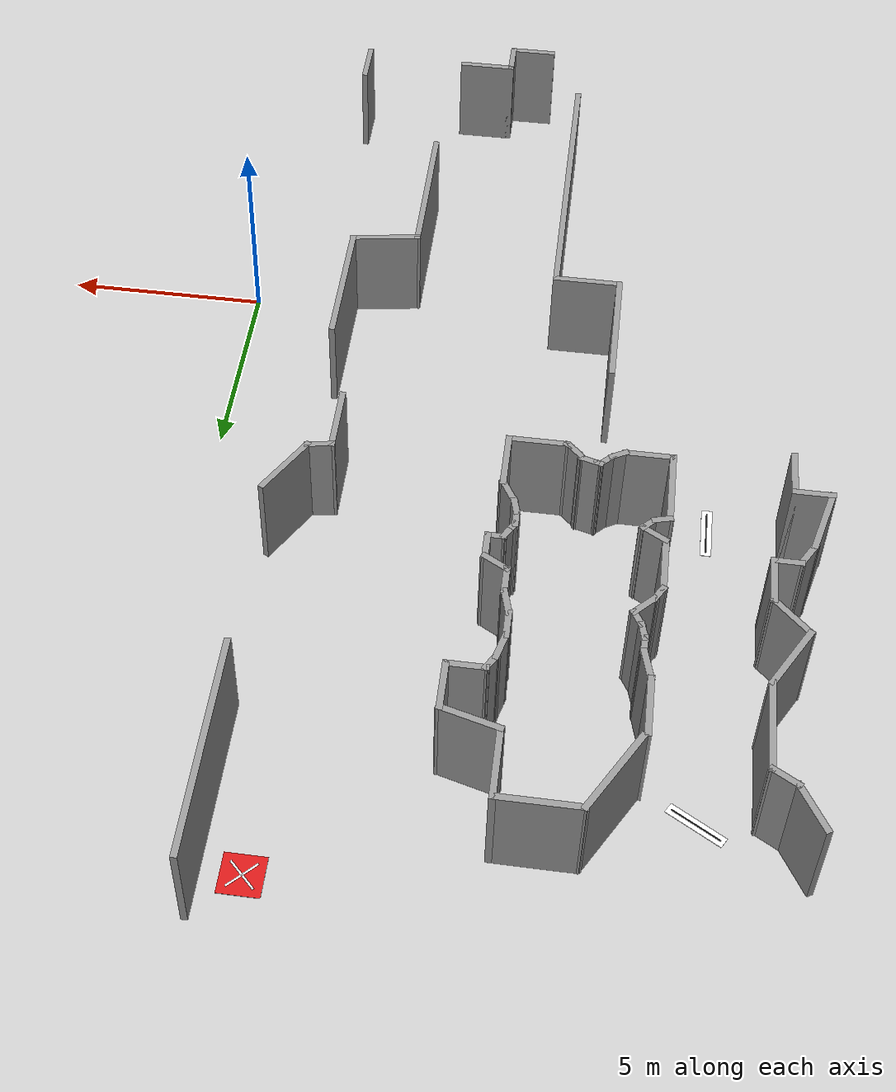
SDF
<sdf version="1.7">
 <world name="default">
  <model name="ground_plane">
   <static>1</static>
   <link name="link">
    <collision name="collision">
     <geometry><plane><normal>0 0 1</normal><size>100 100</size></plane></geometry>
     <surface>
      <contact><collide_bitmask>65535</collide_bitmask></contact>
      <friction><ode><mu>100</mu><mu2>50</mu2></ode></friction>
     </surface>
    </collision>
    <visual name="visual">
     <cast_shadows>0</cast_shadows>
     <geometry><plane><normal>0 0 1</normal><size>100 100</size></plane></geometry>
     <material>
      <script><uri>file://media/materials/scripts/gazebo.material</uri><name>Gazebo/Grey</name></script>
     </material>
    </visual>
   </link>
  </model>
  <model name="latest_world">
   <pose>-1.4911 -0.096187 0 0 -0 0</pose>
   <link name="Wall_1">
    <collision name="Wall_1_Collision">
     <geometry><box><size>5.25 0.15 2.5</size></box></geometry>
     <pose>0 0 1.25 0 -0 0</pose>
    </collision>
    <visual name="Wall_1_Visual">
     <pose>0 0 1.25 0 -0 0</pose>
     <geometry><box><size>5.25 0.15 2.5</size></box></geometry>
     <material>
      <script><uri>file://media/materials/scripts/gazebo.material</uri><name>Gazebo/Grey</name></script>
      <ambient>1 1 1 1</ambient>
     </material>
     <meta><layer>0</layer></meta>
    </visual>
    <pose>-0.444891 15.4657 0 0 -0 -1.5708</pose>
   </link>
   <link name="Wall_153">
    <collision name="Wall_153_Collision">
     <geometry><box><size>7.75 0.15 2.5</size></box></geometry>
     <pose>0 0 1.25 0 -0 0</pose>
    </collision>
    <visual name="Wall_153_Visual">
     <pose>0 0 1.25 0 -0 0</pose>
     <geometry><box><size>7.75 0.15 2.5</size></box></geometry>
     <material>
      <script><uri>file://media/materials/scripts/gazebo.material</uri><name>Gazebo/Grey</name></script>
      <ambient>1 1 1 1</ambient>
     </material>
     <meta><layer>0</layer></meta>
    </visual>
    <pose>-6.4377 -3.07626 0 0 -0 1.5708</pose>
   </link>
   <link name="Wall_154">
    <collision name="Wall_154_Collision">
     <geometry><box><size>1.75 0.15 2.5</size></box></geometry>
     <pose>0 0 1.25 0 -0 0</pose>
    </collision>
    <visual name="Wall_154_Visual">
     <pose>0 0 1.25 0 -0 0</pose>
     <geometry><box><size>1.75 0.15 2.5</size></box></geometry>
     <material>
      <script><uri>file://media/materials/scripts/gazebo.material</uri><name>Gazebo/Grey</name></script>
      <ambient>1 1 1 1</ambient>
     </material>
     <meta><layer>0</layer></meta>
    </visual>
    <pose>-7.2377 0.723744 0 0 -0 3.14159</pose>
   </link>
   <link name="Wall_155">
    <collision name="Wall_155_Collision">
     <geometry><box><size>3.25 0.15 2.5</size></box></geometry>
     <pose>0 0 1.25 0 -0 0</pose>
    </collision>
    <visual name="Wall_155_Visual">
     <pose>0 0 1.25 0 -0 0</pose>
     <geometry><box><size>3.25 0.15 2.5</size></box></geometry>
     <material>
      <script><uri>file://media/materials/scripts/gazebo.material</uri><name>Gazebo/Grey</name></script>
      <ambient>1 1 1 1</ambient>
     </material>
     <meta><layer>0</layer></meta>
    </visual>
    <pose>-8.0377 2.27374 0 0 -0 1.5708</pose>
   </link>
   <link name="Wall_212">
    <collision name="Wall_212_Collision">
     <geometry><box><size>1.25 0.15 2.5</size></box></geometry>
     <pose>0 0 1.25 0 -0 0</pose>
    </collision>
    <visual name="Wall_212_Visual">
     <pose>0 0 1.25 0 -0 0</pose>
     <geometry><box><size>1.25 0.15 2.5</size></box></geometry>
     <material>
      <script><uri>file://media/materials/scripts/gazebo.material</uri><name>Gazebo/Grey</name></script>
      <ambient>1 1 1 1</ambient>
     </material>
     <meta><layer>0</layer></meta>
    </visual>
    <pose>-12.7008 15.2732 0 0 -0 -1.0472</pose>
   </link>
   <link name="Wall_213">
    <collision name="Wall_213_Collision">
     <geometry><box><size>0.75 0.15 2.5</size></box></geometry>
     <pose>0 0 1.25 0 -0 0</pose>
    </collision>
    <visual name="Wall_213_Visual">
     <pose>0 0 1.25 0 -0 0</pose>
     <geometry><box><size>0.75 0.15 2.5</size></box></geometry>
     <material>
      <script><uri>file://media/materials/scripts/gazebo.material</uri><name>Gazebo/Grey</name></script>
      <ambient>1 1 1 1</ambient>
     </material>
     <meta><layer>0</layer></meta>
    </visual>
    <pose>-12.166 14.6469 0 0 -0 -0.523599</pose>
   </link>
   <link name="Wall_214">
    <collision name="Wall_214_Collision">
     <geometry><box><size>2.25 0.15 2.5</size></box></geometry>
     <pose>0 0 1.25 0 -0 0</pose>
    </collision>
    <visual name="Wall_214_Visual">
     <pose>0 0 1.25 0 -0 0</pose>
     <geometry><box><size>2.25 0.15 2.5</size></box></geometry>
     <material>
      <script><uri>file://media/materials/scripts/gazebo.material</uri><name>Gazebo/Grey</name></script>
      <ambient>1 1 1 1</ambient>
     </material>
     <meta><layer>0</layer></meta>
    </visual>
    <pose>-11.9062 13.4469 0 0 -0 -1.5708</pose>
   </link>
   <link name="Wall_215">
    <collision name="Wall_215_Collision">
     <geometry><box><size>1.75 0.15 2.5</size></box></geometry>
     <pose>0 0 1.25 0 -0 0</pose>
    </collision>
    <visual name="Wall_215_Visual">
     <pose>0 0 1.25 0 -0 0</pose>
     <geometry><box><size>1.75 0.15 2.5</size></box></geometry>
     <material>
      <script><uri>file://media/materials/scripts/gazebo.material</uri><name>Gazebo/Grey</name></script>
      <ambient>1 1 1 1</ambient>
     </material>
     <meta><layer>0</layer></meta>
    </visual>
    <pose>-12.3062 11.7041 0 0 -0 -2.0944</pose>
   </link>
   <link name="Wall_216">
    <collision name="Wall_216_Collision">
     <geometry><box><size>1.25 0.15 2.5</size></box></geometry>
     <pose>0 0 1.25 0 -0 0</pose>
    </collision>
    <visual name="Wall_216_Visual">
     <pose>0 0 1.25 0 -0 0</pose>
     <geometry><box><size>1.25 0.15 2.5</size></box></geometry>
     <material>
      <script><uri>file://media/materials/scripts/gazebo.material</uri><name>Gazebo/Grey</name></script>
      <ambient>1 1 1 1</ambient>
     </material>
     <meta><layer>0</layer></meta>
    </visual>
    <pose>-12.3173 10.6224 0 0 -0 -0.785398</pose>
   </link>
   <link name="Wall_217">
    <collision name="Wall_217_Collision">
     <geometry><box><size>1.25 0.15 2.5</size></box></geometry>
     <pose>0 0 1.25 0 -0 0</pose>
    </collision>
    <visual name="Wall_217_Visual">
     <pose>0 0 1.25 0 -0 0</pose>
     <geometry><box><size>1.25 0.15 2.5</size></box></geometry>
     <material>
      <script><uri>file://media/materials/scripts/gazebo.material</uri><name>Gazebo/Grey</name></script>
      <ambient>1 1 1 1</ambient>
     </material>
     <meta><layer>0</layer></meta>
    </visual>
    <pose>-11.9284 9.68346 0 0 -0 -1.5708</pose>
   </link>
   <link name="Wall_218">
    <collision name="Wall_218_Collision">
     <geometry><box><size>0.75 0.15 2.5</size></box></geometry>
     <pose>0 0 1.25 0 -0 0</pose>
    </collision>
    <visual name="Wall_218_Visual">
     <pose>0 0 1.25 0 -0 0</pose>
     <geometry><box><size>0.75 0.15 2.5</size></box></geometry>
     <material>
      <script><uri>file://media/materials/scripts/gazebo.material</uri><name>Gazebo/Grey</name></script>
      <ambient>1 1 1 1</ambient>
     </material>
     <meta><layer>0</layer></meta>
    </visual>
    <pose>-12.2284 9.13346 0 0 -0 3.14159</pose>
   </link>
   <link name="Wall_219">
    <collision name="Wall_219_Collision">
     <geometry><box><size>0.75 0.15 2.5</size></box></geometry>
     <pose>0 0 1.25 0 -0 0</pose>
    </collision>
    <visual name="Wall_219_Visual">
     <pose>0 0 1.25 0 -0 0</pose>
     <geometry><box><size>0.75 0.15 2.5</size></box></geometry>
     <material>
      <script><uri>file://media/materials/scripts/gazebo.material</uri><name>Gazebo/Grey</name></script>
      <ambient>1 1 1 1</ambient>
     </material>
     <meta><layer>0</layer></meta>
    </visual>
    <pose>-12.6784 8.87365 0 0 -0 -2.0944</pose>
   </link>
   <link name="Wall_220">
    <collision name="Wall_220_Collision">
     <geometry><box><size>1.75 0.15 2.5</size></box></geometry>
     <pose>0 0 1.25 0 -0 0</pose>
    </collision>
    <visual name="Wall_220_Visual">
     <pose>0 0 1.25 0 -0 0</pose>
     <geometry><box><size>1.75 0.15 2.5</size></box></geometry>
     <material>
      <script><uri>file://media/materials/scripts/gazebo.material</uri><name>Gazebo/Grey</name></script>
      <ambient>1 1 1 1</ambient>
     </material>
     <meta><layer>0</layer></meta>
    </visual>
    <pose>-13.0354 7.8411 0 0 -0 -1.8326</pose>
   </link>
   <link name="Wall_221">
    <collision name="Wall_221_Collision">
     <geometry><box><size>1 0.15 2.5</size></box></geometry>
     <pose>0 0 1.25 0 -0 0</pose>
    </collision>
    <visual name="Wall_221_Visual">
     <pose>0 0 1.25 0 -0 0</pose>
     <geometry><box><size>1 0.15 2.5</size></box></geometry>
     <material>
      <script><uri>file://media/materials/scripts/gazebo.material</uri><name>Gazebo/Grey</name></script>
      <ambient>1 1 1 1</ambient>
     </material>
     <meta><layer>0</layer></meta>
    </visual>
    <pose>-12.8175 7.06837 0 0 -0 0</pose>
   </link>
   <link name="Wall_222">
    <collision name="Wall_222_Collision">
     <geometry><box><size>1.25 0.15 2.5</size></box></geometry>
     <pose>0 0 1.25 0 -0 0</pose>
    </collision>
    <visual name="Wall_222_Visual">
     <pose>0 0 1.25 0 -0 0</pose>
     <geometry><box><size>1.25 0.15 2.5</size></box></geometry>
     <material>
      <script><uri>file://media/materials/scripts/gazebo.material</uri><name>Gazebo/Grey</name></script>
      <ambient>1 1 1 1</ambient>
     </material>
     <meta><layer>0</layer></meta>
    </visual>
    <pose>-12.3925 6.51837 0 0 -0 -1.5708</pose>
   </link>
   <link name="Wall_237">
    <collision name="Wall_237_Collision">
     <geometry><box><size>1.5 0.15 2.5</size></box></geometry>
     <pose>0 0 1.25 0 -0 0</pose>
    </collision>
    <visual name="Wall_237_Visual">
     <pose>0 0 1.25 0 -0 0</pose>
     <geometry><box><size>1.5 0.15 2.5</size></box></geometry>
     <material>
      <script><uri>file://media/materials/scripts/gazebo.material</uri><name>Gazebo/Grey</name></script>
      <ambient>1 1 1 1</ambient>
     </material>
     <meta><layer>0</layer></meta>
    </visual>
    <pose>-9.39119 13.3093 0 0 -0 -1.5708</pose>
   </link>
   <link name="Wall_238">
    <collision name="Wall_238_Collision">
     <geometry><box><size>0.83117 0.15 2.5</size></box></geometry>
     <pose>0 0 1.25 0 -0 0</pose>
    </collision>
    <visual name="Wall_238_Visual">
     <pose>0 0 1.25 0 -0 0</pose>
     <geometry><box><size>0.83117 0.15 2.5</size></box></geometry>
     <material>
      <script><uri>file://media/materials/scripts/gazebo.material</uri><name>Gazebo/Grey</name></script>
      <ambient>1 1 1 1</ambient>
     </material>
     <meta><layer>0</layer></meta>
    </visual>
    <pose>-9.29619 12.2945 0 0 -0 -1.31856</pose>
   </link>
   <link name="Wall_239">
    <collision name="Wall_239_Collision">
     <geometry><box><size>0.5 0.15 2.5</size></box></geometry>
     <pose>0 0 1.25 0 -0 0</pose>
    </collision>
    <visual name="Wall_239_Visual">
     <pose>0 0 1.25 0 -0 0</pose>
     <geometry><box><size>0.5 0.15 2.5</size></box></geometry>
     <material>
      <script><uri>file://media/materials/scripts/gazebo.material</uri><name>Gazebo/Grey</name></script>
      <ambient>1 1 1 1</ambient>
     </material>
     <meta><layer>0</layer></meta>
    </visual>
    <pose>-9.21119 11.7897 0 0 -0 -1.5708</pose>
   </link>
   <link name="Wall_240">
    <collision name="Wall_240_Collision">
     <geometry><box><size>0.5 0.15 2.5</size></box></geometry>
     <pose>0 0 1.25 0 -0 0</pose>
    </collision>
    <visual name="Wall_240_Visual">
     <pose>0 0 1.25 0 -0 0</pose>
     <geometry><box><size>0.5 0.15 2.5</size></box></geometry>
     <material>
      <script><uri>file://media/materials/scripts/gazebo.material</uri><name>Gazebo/Grey</name></script>
      <ambient>1 1 1 1</ambient>
     </material>
     <meta><layer>0</layer></meta>
    </visual>
    <pose>-9.1659 11.4457 0 0 -0 -1.309</pose>
   </link>
   <link name="Wall_241">
    <collision name="Wall_241_Collision">
     <geometry><box><size>0.5 0.15 2.5</size></box></geometry>
     <pose>0 0 1.25 0 -0 0</pose>
    </collision>
    <visual name="Wall_241_Visual">
     <pose>0 0 1.25 0 -0 0</pose>
     <geometry><box><size>0.5 0.15 2.5</size></box></geometry>
     <material>
      <script><uri>file://media/materials/scripts/gazebo.material</uri><name>Gazebo/Grey</name></script>
      <ambient>1 1 1 1</ambient>
     </material>
     <meta><layer>0</layer></meta>
    </visual>
    <pose>-9.0331 11.1251 0 0 -0 -1.0472</pose>
   </link>
   <link name="Wall_242">
    <collision name="Wall_242_Collision">
     <geometry><box><size>0.75 0.15 2.5</size></box></geometry>
     <pose>0 0 1.25 0 -0 0</pose>
    </collision>
    <visual name="Wall_242_Visual">
     <pose>0 0 1.25 0 -0 0</pose>
     <geometry><box><size>0.75 0.15 2.5</size></box></geometry>
     <material>
      <script><uri>file://media/materials/scripts/gazebo.material</uri><name>Gazebo/Grey</name></script>
      <ambient>1 1 1 1</ambient>
     </material>
     <meta><layer>0</layer></meta>
    </visual>
    <pose>-9.15774 10.7614 0 0 -0 -2.35619</pose>
   </link>
   <link name="Wall_243">
    <collision name="Wall_243_Collision">
     <geometry><box><size>0.5 0.15 2.5</size></box></geometry>
     <pose>0 0 1.25 0 -0 0</pose>
    </collision>
    <visual name="Wall_243_Visual">
     <pose>0 0 1.25 0 -0 0</pose>
     <geometry><box><size>0.5 0.15 2.5</size></box></geometry>
     <material>
      <script><uri>file://media/materials/scripts/gazebo.material</uri><name>Gazebo/Grey</name></script>
      <ambient>1 1 1 1</ambient>
     </material>
     <meta><layer>0</layer></meta>
    </visual>
    <pose>-9.45737 10.3977 0 0 -0 -2.0944</pose>
   </link>
   <link name="Wall_244">
    <collision name="Wall_244_Collision">
     <geometry><box><size>1.5 0.15 2.5</size></box></geometry>
     <pose>0 0 1.25 0 -0 0</pose>
    </collision>
    <visual name="Wall_244_Visual">
     <pose>0 0 1.25 0 -0 0</pose>
     <geometry><box><size>1.5 0.15 2.5</size></box></geometry>
     <material>
      <script><uri>file://media/materials/scripts/gazebo.material</uri><name>Gazebo/Grey</name></script>
      <ambient>1 1 1 1</ambient>
     </material>
     <meta><layer>0</layer></meta>
    </visual>
    <pose>-9.54487 9.57116 0 0 -0 -1.5708</pose>
   </link>
   <link name="Wall_245">
    <collision name="Wall_245_Collision">
     <geometry><box><size>0.75 0.15 2.5</size></box></geometry>
     <pose>0 0 1.25 0 -0 0</pose>
    </collision>
    <visual name="Wall_245_Visual">
     <pose>0 0 1.25 0 -0 0</pose>
     <geometry><box><size>0.75 0.15 2.5</size></box></geometry>
     <material>
      <script><uri>file://media/materials/scripts/gazebo.material</uri><name>Gazebo/Grey</name></script>
      <ambient>1 1 1 1</ambient>
     </material>
     <meta><layer>0</layer></meta>
    </visual>
    <pose>-9.28506 8.74616 0 0 -0 -0.523599</pose>
   </link>
   <link name="Wall_246">
    <collision name="Wall_246_Collision">
     <geometry><box><size>0.5 0.15 2.5</size></box></geometry>
     <pose>0 0 1.25 0 -0 0</pose>
    </collision>
    <visual name="Wall_246_Visual">
     <pose>0 0 1.25 0 -0 0</pose>
     <geometry><box><size>0.5 0.15 2.5</size></box></geometry>
     <material>
      <script><uri>file://media/materials/scripts/gazebo.material</uri><name>Gazebo/Grey</name></script>
      <ambient>1 1 1 1</ambient>
     </material>
     <meta><layer>0</layer></meta>
    </visual>
    <pose>-9.14899 8.47242 0 0 -0 -2.35619</pose>
   </link>
   <link name="Wall_247">
    <collision name="Wall_247_Collision">
     <geometry><box><size>0.5 0.15 2.5</size></box></geometry>
     <pose>0 0 1.25 0 -0 0</pose>
    </collision>
    <visual name="Wall_247_Visual">
     <pose>0 0 1.25 0 -0 0</pose>
     <geometry><box><size>0.5 0.15 2.5</size></box></geometry>
     <material>
      <script><uri>file://media/materials/scripts/gazebo.material</uri><name>Gazebo/Grey</name></script>
      <ambient>1 1 1 1</ambient>
     </material>
     <meta><layer>0</layer></meta>
    </visual>
    <pose>-9.44177 8.30338 0 0 -0 -2.87979</pose>
   </link>
   <link name="Wall_248">
    <collision name="Wall_248_Collision">
     <geometry><box><size>2 0.15 2.5</size></box></geometry>
     <pose>0 0 1.25 0 -0 0</pose>
    </collision>
    <visual name="Wall_248_Visual">
     <pose>0 0 1.25 0 -0 0</pose>
     <geometry><box><size>2 0.15 2.5</size></box></geometry>
     <material>
      <script><uri>file://media/materials/scripts/gazebo.material</uri><name>Gazebo/Grey</name></script>
      <ambient>1 1 1 1</ambient>
     </material>
     <meta><layer>0</layer></meta>
    </visual>
    <pose>-9.61081 7.33309 0 0 -0 -1.5708</pose>
   </link>
   <link name="Wall_249">
    <collision name="Wall_249_Collision">
     <geometry><box><size>1.25 0.15 2.5</size></box></geometry>
     <pose>0 0 1.25 0 -0 0</pose>
    </collision>
    <visual name="Wall_249_Visual">
     <pose>0 0 1.25 0 -0 0</pose>
     <geometry><box><size>1.25 0.15 2.5</size></box></geometry>
     <material>
      <script><uri>file://media/materials/scripts/gazebo.material</uri><name>Gazebo/Grey</name></script>
      <ambient>1 1 1 1</ambient>
     </material>
     <meta><layer>0</layer></meta>
    </visual>
    <pose>-9.06081 6.40809 0 0 -0 0</pose>
   </link>
   <link name="Wall_250">
    <collision name="Wall_250_Collision">
     <geometry><box><size>0.5 0.15 2.5</size></box></geometry>
     <pose>0 0 1.25 0 -0 0</pose>
    </collision>
    <visual name="Wall_250_Visual">
     <pose>0 0 1.25 0 -0 0</pose>
     <geometry><box><size>0.5 0.15 2.5</size></box></geometry>
     <material>
      <script><uri>file://media/materials/scripts/gazebo.material</uri><name>Gazebo/Grey</name></script>
      <ambient>1 1 1 1</ambient>
     </material>
     <meta><layer>0</layer></meta>
    </visual>
    <pose>-8.35926 6.49559 0 0 -0 0.523599</pose>
   </link>
   <link name="Wall_251">
    <collision name="Wall_251_Collision">
     <geometry><box><size>0.5 0.15 2.5</size></box></geometry>
     <pose>0 0 1.25 0 -0 0</pose>
    </collision>
    <visual name="Wall_251_Visual">
     <pose>0 0 1.25 0 -0 0</pose>
     <geometry><box><size>0.5 0.15 2.5</size></box></geometry>
     <material>
      <script><uri>file://media/materials/scripts/gazebo.material</uri><name>Gazebo/Grey</name></script>
      <ambient>1 1 1 1</ambient>
     </material>
     <meta><layer>0</layer></meta>
    </visual>
    <pose>-8.08396 6.70683 0 0 -0 0.785398</pose>
   </link>
   <link name="Wall_252">
    <collision name="Wall_252_Collision">
     <geometry><box><size>0.25 0.15 2.5</size></box></geometry>
     <pose>0 0 1.25 0 -0 0</pose>
    </collision>
    <visual name="Wall_252_Visual">
     <pose>0 0 1.25 0 -0 0</pose>
     <geometry><box><size>0.25 0.15 2.5</size></box></geometry>
     <material>
      <script><uri>file://media/materials/scripts/gazebo.material</uri><name>Gazebo/Grey</name></script>
      <ambient>1 1 1 1</ambient>
     </material>
     <meta><layer>0</layer></meta>
    </visual>
    <pose>-7.91192 6.81763 0 0 -0 -0.261799</pose>
   </link>
   <link name="Wall_253">
    <collision name="Wall_253_Collision">
     <geometry><box><size>0.5 0.15 2.5</size></box></geometry>
     <pose>0 0 1.25 0 -0 0</pose>
    </collision>
    <visual name="Wall_253_Visual">
     <pose>0 0 1.25 0 -0 0</pose>
     <geometry><box><size>0.5 0.15 2.5</size></box></geometry>
     <material>
      <script><uri>file://media/materials/scripts/gazebo.material</uri><name>Gazebo/Grey</name></script>
      <ambient>1 1 1 1</ambient>
     </material>
     <meta><layer>0</layer></meta>
    </visual>
    <pose>-7.69459 6.7594 0 0 -0 -0.261799</pose>
   </link>
   <link name="Wall_254">
    <collision name="Wall_254_Collision">
     <geometry><box><size>0.25 0.15 2.5</size></box></geometry>
     <pose>0 0 1.25 0 -0 0</pose>
    </collision>
    <visual name="Wall_254_Visual">
     <pose>0 0 1.25 0 -0 0</pose>
     <geometry><box><size>0.25 0.15 2.5</size></box></geometry>
     <material>
      <script><uri>file://media/materials/scripts/gazebo.material</uri><name>Gazebo/Grey</name></script>
      <ambient>1 1 1 1</ambient>
     </material>
     <meta><layer>0</layer></meta>
    </visual>
    <pose>-7.50055 6.6708 0 0 -0 -1.0472</pose>
   </link>
   <link name="Wall_255">
    <collision name="Wall_255_Collision">
     <geometry><box><size>0.5 0.15 2.5</size></box></geometry>
     <pose>0 0 1.25 0 -0 0</pose>
    </collision>
    <visual name="Wall_255_Visual">
     <pose>0 0 1.25 0 -0 0</pose>
     <geometry><box><size>0.5 0.15 2.5</size></box></geometry>
     <material>
      <script><uri>file://media/materials/scripts/gazebo.material</uri><name>Gazebo/Grey</name></script>
      <ambient>1 1 1 1</ambient>
     </material>
     <meta><layer>0</layer></meta>
    </visual>
    <pose>-7.35181 6.50376 0 0 -0 -0.785398</pose>
   </link>
   <link name="Wall_256">
    <collision name="Wall_256_Collision">
     <geometry><box><size>0.25 0.15 2.5</size></box></geometry>
     <pose>0 0 1.25 0 -0 0</pose>
    </collision>
    <visual name="Wall_256_Visual">
     <pose>0 0 1.25 0 -0 0</pose>
     <geometry><box><size>0.25 0.15 2.5</size></box></geometry>
     <material>
      <script><uri>file://media/materials/scripts/gazebo.material</uri><name>Gazebo/Grey</name></script>
      <ambient>1 1 1 1</ambient>
     </material>
     <meta><layer>0</layer></meta>
    </visual>
    <pose>-7.18476 6.35502 0 0 -0 -0.523599</pose>
   </link>
   <link name="Wall_257">
    <collision name="Wall_257_Collision">
     <geometry><box><size>1.5 0.15 2.5</size></box></geometry>
     <pose>0 0 1.25 0 -0 0</pose>
    </collision>
    <visual name="Wall_257_Visual">
     <pose>0 0 1.25 0 -0 0</pose>
     <geometry><box><size>1.5 0.15 2.5</size></box></geometry>
     <material>
      <script><uri>file://media/materials/scripts/gazebo.material</uri><name>Gazebo/Grey</name></script>
      <ambient>1 1 1 1</ambient>
     </material>
     <meta><layer>0</layer></meta>
    </visual>
    <pose>-6.46646 6.33002 0 0 -0 0</pose>
   </link>
   <link name="Wall_258">
    <collision name="Wall_258_Collision">
     <geometry><box><size>1.5 0.15 2.5</size></box></geometry>
     <pose>0 0 1.25 0 -0 0</pose>
    </collision>
    <visual name="Wall_258_Visual">
     <pose>0 0 1.25 0 -0 0</pose>
     <geometry><box><size>1.5 0.15 2.5</size></box></geometry>
     <material>
      <script><uri>file://media/materials/scripts/gazebo.material</uri><name>Gazebo/Grey</name></script>
      <ambient>1 1 1 1</ambient>
     </material>
     <meta><layer>0</layer></meta>
    </visual>
    <pose>-5.79146 7.00502 0 0 -0 1.5708</pose>
   </link>
   <link name="Wall_259">
    <collision name="Wall_259_Collision">
     <geometry><box><size>0.75 0.15 2.5</size></box></geometry>
     <pose>0 0 1.25 0 -0 0</pose>
    </collision>
    <visual name="Wall_259_Visual">
     <pose>0 0 1.25 0 -0 0</pose>
     <geometry><box><size>0.75 0.15 2.5</size></box></geometry>
     <material>
      <script><uri>file://media/materials/scripts/gazebo.material</uri><name>Gazebo/Grey</name></script>
      <ambient>1 1 1 1</ambient>
     </material>
     <meta><layer>0</layer></meta>
    </visual>
    <pose>-5.94146 7.93982 0 0 -0 2.0944</pose>
   </link>
   <link name="Wall_260">
    <collision name="Wall_260_Collision">
     <geometry><box><size>0.5 0.15 2.5</size></box></geometry>
     <pose>0 0 1.25 0 -0 0</pose>
    </collision>
    <visual name="Wall_260_Visual">
     <pose>0 0 1.25 0 -0 0</pose>
     <geometry><box><size>0.5 0.15 2.5</size></box></geometry>
     <material>
      <script><uri>file://media/materials/scripts/gazebo.material</uri><name>Gazebo/Grey</name></script>
      <ambient>1 1 1 1</ambient>
     </material>
     <meta><layer>0</layer></meta>
    </visual>
    <pose>-6.13675 8.36867 0 0 -0 1.8326</pose>
   </link>
   <link name="Wall_261">
    <collision name="Wall_261_Collision">
     <geometry><box><size>0.5 0.15 2.5</size></box></geometry>
     <pose>0 0 1.25 0 -0 0</pose>
    </collision>
    <visual name="Wall_261_Visual">
     <pose>0 0 1.25 0 -0 0</pose>
     <geometry><box><size>0.5 0.15 2.5</size></box></geometry>
     <material>
      <script><uri>file://media/materials/scripts/gazebo.material</uri><name>Gazebo/Grey</name></script>
      <ambient>1 1 1 1</ambient>
     </material>
     <meta><layer>0</layer></meta>
    </visual>
    <pose>-6.18205 8.71271 0 0 -0 1.5708</pose>
   </link>
   <link name="Wall_262">
    <collision name="Wall_262_Collision">
     <geometry><box><size>0.25 0.15 2.5</size></box></geometry>
     <pose>0 0 1.25 0 -0 0</pose>
    </collision>
    <visual name="Wall_262_Visual">
     <pose>0 0 1.25 0 -0 0</pose>
     <geometry><box><size>0.25 0.15 2.5</size></box></geometry>
     <material>
      <script><uri>file://media/materials/scripts/gazebo.material</uri><name>Gazebo/Grey</name></script>
      <ambient>1 1 1 1</ambient>
     </material>
     <meta><layer>0</layer></meta>
    </visual>
    <pose>-6.15705 8.93101 0 0 -0 1.0472</pose>
   </link>
   <link name="Wall_263">
    <collision name="Wall_263_Collision">
     <geometry><box><size>0.5 0.15 2.5</size></box></geometry>
     <pose>0 0 1.25 0 -0 0</pose>
    </collision>
    <visual name="Wall_263_Visual">
     <pose>0 0 1.25 0 -0 0</pose>
     <geometry><box><size>0.5 0.15 2.5</size></box></geometry>
     <material>
      <script><uri>file://media/materials/scripts/gazebo.material</uri><name>Gazebo/Grey</name></script>
      <ambient>1 1 1 1</ambient>
     </material>
     <meta><layer>0</layer></meta>
    </visual>
    <pose>-6.04455 9.12586 0 0 -0 1.0472</pose>
   </link>
   <link name="Wall_264">
    <collision name="Wall_264_Collision">
     <geometry><box><size>0.5 0.15 2.5</size></box></geometry>
     <pose>0 0 1.25 0 -0 0</pose>
    </collision>
    <visual name="Wall_264_Visual">
     <pose>0 0 1.25 0 -0 0</pose>
     <geometry><box><size>0.5 0.15 2.5</size></box></geometry>
     <material>
      <script><uri>file://media/materials/scripts/gazebo.material</uri><name>Gazebo/Grey</name></script>
      <ambient>1 1 1 1</ambient>
     </material>
     <meta><layer>0</layer></meta>
    </visual>
    <pose>-5.78205 9.27742 0 0 -0 0</pose>
   </link>
   <link name="Wall_265">
    <collision name="Wall_265_Collision">
     <geometry><box><size>0.75 0.15 2.5</size></box></geometry>
     <pose>0 0 1.25 0 -0 0</pose>
    </collision>
    <visual name="Wall_265_Visual">
     <pose>0 0 1.25 0 -0 0</pose>
     <geometry><box><size>0.75 0.15 2.5</size></box></geometry>
     <material>
      <script><uri>file://media/materials/scripts/gazebo.material</uri><name>Gazebo/Grey</name></script>
      <ambient>1 1 1 1</ambient>
     </material>
     <meta><layer>0</layer></meta>
    </visual>
    <pose>-5.60705 9.57742 0 0 -0 1.5708</pose>
   </link>
   <link name="Wall_266">
    <collision name="Wall_266_Collision">
     <geometry><box><size>0.75 0.15 2.5</size></box></geometry>
     <pose>0 0 1.25 0 -0 0</pose>
    </collision>
    <visual name="Wall_266_Visual">
     <pose>0 0 1.25 0 -0 0</pose>
     <geometry><box><size>0.75 0.15 2.5</size></box></geometry>
     <material>
      <script><uri>file://media/materials/scripts/gazebo.material</uri><name>Gazebo/Grey</name></script>
      <ambient>1 1 1 1</ambient>
     </material>
     <meta><layer>0</layer></meta>
    </visual>
    <pose>-5.86685 10.0274 0 0 -0 2.61799</pose>
   </link>
   <link name="Wall_267">
    <collision name="Wall_267_Collision">
     <geometry><box><size>0.75 0.15 2.5</size></box></geometry>
     <pose>0 0 1.25 0 -0 0</pose>
    </collision>
    <visual name="Wall_267_Visual">
     <pose>0 0 1.25 0 -0 0</pose>
     <geometry><box><size>0.75 0.15 2.5</size></box></geometry>
     <material>
      <script><uri>file://media/materials/scripts/gazebo.material</uri><name>Gazebo/Grey</name></script>
      <ambient>1 1 1 1</ambient>
     </material>
     <meta><layer>0</layer></meta>
    </visual>
    <pose>-6.12666 10.4774 0 0 -0 1.5708</pose>
   </link>
   <link name="Wall_268">
    <collision name="Wall_268_Collision">
     <geometry><box><size>0.75 0.15 2.5</size></box></geometry>
     <pose>0 0 1.25 0 -0 0</pose>
    </collision>
    <visual name="Wall_268_Visual">
     <pose>0 0 1.25 0 -0 0</pose>
     <geometry><box><size>0.75 0.15 2.5</size></box></geometry>
     <material>
      <script><uri>file://media/materials/scripts/gazebo.material</uri><name>Gazebo/Grey</name></script>
      <ambient>1 1 1 1</ambient>
     </material>
     <meta><layer>0</layer></meta>
    </visual>
    <pose>-6.20431 11.0672 0 0 -0 1.8326</pose>
   </link>
   <link name="Wall_269">
    <collision name="Wall_269_Collision">
     <geometry><box><size>0.75 0.15 2.5</size></box></geometry>
     <pose>0 0 1.25 0 -0 0</pose>
    </collision>
    <visual name="Wall_269_Visual">
     <pose>0 0 1.25 0 -0 0</pose>
     <geometry><box><size>0.75 0.15 2.5</size></box></geometry>
     <material>
      <script><uri>file://media/materials/scripts/gazebo.material</uri><name>Gazebo/Grey</name></script>
      <ambient>1 1 1 1</ambient>
     </material>
     <meta><layer>0</layer></meta>
    </visual>
    <pose>-6.28195 11.657 0 0 -0 1.5708</pose>
   </link>
   <link name="Wall_270">
    <collision name="Wall_270_Collision">
     <geometry><box><size>0.75 0.15 2.5</size></box></geometry>
     <pose>0 0 1.25 0 -0 0</pose>
    </collision>
    <visual name="Wall_270_Visual">
     <pose>0 0 1.25 0 -0 0</pose>
     <geometry><box><size>0.75 0.15 2.5</size></box></geometry>
     <material>
      <script><uri>file://media/materials/scripts/gazebo.material</uri><name>Gazebo/Grey</name></script>
      <ambient>1 1 1 1</ambient>
     </material>
     <meta><layer>0</layer></meta>
    </visual>
    <pose>-6.20431 12.2468 0 0 -0 1.309</pose>
   </link>
   <link name="Wall_271">
    <collision name="Wall_271_Collision">
     <geometry><box><size>0.5 0.15 2.5</size></box></geometry>
     <pose>0 0 1.25 0 -0 0</pose>
    </collision>
    <visual name="Wall_271_Visual">
     <pose>0 0 1.25 0 -0 0</pose>
     <geometry><box><size>0.5 0.15 2.5</size></box></geometry>
     <material>
      <script><uri>file://media/materials/scripts/gazebo.material</uri><name>Gazebo/Grey</name></script>
      <ambient>1 1 1 1</ambient>
     </material>
     <meta><layer>0</layer></meta>
    </visual>
    <pose>-6.03916 12.6881 0 0 -0 1.0472</pose>
   </link>
   <link name="Wall_272">
    <collision name="Wall_272_Collision">
     <geometry><box><size>1 0.15 2.5</size></box></geometry>
     <pose>0 0 1.25 0 -0 0</pose>
    </collision>
    <visual name="Wall_272_Visual">
     <pose>0 0 1.25 0 -0 0</pose>
     <geometry><box><size>1 0.15 2.5</size></box></geometry>
     <material>
      <script><uri>file://media/materials/scripts/gazebo.material</uri><name>Gazebo/Grey</name></script>
      <ambient>1 1 1 1</ambient>
     </material>
     <meta><layer>0</layer></meta>
    </visual>
    <pose>-5.52666 12.8396 0 0 -0 0</pose>
   </link>
   <link name="Wall_273">
    <collision name="Wall_273_Collision">
     <geometry><box><size>1.25 0.15 2.5</size></box></geometry>
     <pose>0 0 1.25 0 -0 0</pose>
    </collision>
    <visual name="Wall_273_Visual">
     <pose>0 0 1.25 0 -0 0</pose>
     <geometry><box><size>1.25 0.15 2.5</size></box></geometry>
     <material>
      <script><uri>file://media/materials/scripts/gazebo.material</uri><name>Gazebo/Grey</name></script>
      <ambient>1 1 1 1</ambient>
     </material>
     <meta><layer>0</layer></meta>
    </visual>
    <pose>-5.10166 13.3896 0 0 -0 1.5708</pose>
   </link>
   <link name="Wall_274">
    <collision name="Wall_274_Collision">
     <geometry><box><size>1.5 0.15 2.5</size></box></geometry>
     <pose>0 0 1.25 0 -0 0</pose>
    </collision>
    <visual name="Wall_274_Visual">
     <pose>0 0 1.25 0 -0 0</pose>
     <geometry><box><size>1.5 0.15 2.5</size></box></geometry>
     <material>
      <script><uri>file://media/materials/scripts/gazebo.material</uri><name>Gazebo/Grey</name></script>
      <ambient>1 1 1 1</ambient>
     </material>
     <meta><layer>0</layer></meta>
    </visual>
    <pose>-5.75366 14.1143 0 0 -0 2.87979</pose>
   </link>
   <link name="Wall_275">
    <collision name="Wall_275_Collision">
     <geometry><box><size>1.75 0.15 2.5</size></box></geometry>
     <pose>0 0 1.25 0 -0 0</pose>
    </collision>
    <visual name="Wall_275_Visual">
     <pose>0 0 1.25 0 -0 0</pose>
     <geometry><box><size>1.75 0.15 2.5</size></box></geometry>
     <material>
      <script><uri>file://media/materials/scripts/gazebo.material</uri><name>Gazebo/Grey</name></script>
      <ambient>1 1 1 1</ambient>
     </material>
     <meta><layer>0</layer></meta>
    </visual>
    <pose>-6.40566 15.089 0 0 -0 1.5708</pose>
   </link>
   <link name="Wall_276">
    <collision name="Wall_276_Collision">
     <geometry><box><size>2 0.15 2.5</size></box></geometry>
     <pose>0 0 1.25 0 -0 0</pose>
    </collision>
    <visual name="Wall_276_Visual">
     <pose>0 0 1.25 0 -0 0</pose>
     <geometry><box><size>2 0.15 2.5</size></box></geometry>
     <material>
      <script><uri>file://media/materials/scripts/gazebo.material</uri><name>Gazebo/Grey</name></script>
      <ambient>1 1 1 1</ambient>
     </material>
     <meta><layer>0</layer></meta>
    </visual>
    <pose>-7.33066 15.889 0 0 -0 3.14159</pose>
   </link>
   <link name="Wall_277">
    <collision name="Wall_277_Collision">
     <geometry><box><size>2.25 0.15 2.5</size></box></geometry>
     <pose>0 0 1.25 0 -0 0</pose>
    </collision>
    <visual name="Wall_277_Visual">
     <pose>0 0 1.25 0 -0 0</pose>
     <geometry><box><size>2.25 0.15 2.5</size></box></geometry>
     <material>
      <script><uri>file://media/materials/scripts/gazebo.material</uri><name>Gazebo/Grey</name></script>
      <ambient>1 1 1 1</ambient>
     </material>
     <meta><layer>0</layer></meta>
    </visual>
    <pose>-8.78066 14.9797 0 0 -0 -2.0944</pose>
   </link>
   <link name="Wall_279">
    <collision name="Wall_279_Collision">
     <geometry><box><size>1.25 0.15 2.5</size></box></geometry>
     <pose>0 0 1.25 0 -0 0</pose>
    </collision>
    <visual name="Wall_279_Visual">
     <pose>0 0 1.25 0 -0 0</pose>
     <geometry><box><size>1.25 0.15 2.5</size></box></geometry>
     <material>
      <script><uri>file://media/materials/scripts/gazebo.material</uri><name>Gazebo/Grey</name></script>
      <ambient>1 1 1 1</ambient>
     </material>
     <meta><layer>0</layer></meta>
    </visual>
    <pose>-0.355137 -7.59426 0 0 -0 -1.5708</pose>
   </link>
   <link name="Wall_301">
    <collision name="Wall_301_Collision">
     <geometry><box><size>4 0.15 2.5</size></box></geometry>
     <pose>0 0 1.25 0 -0 0</pose>
    </collision>
    <visual name="Wall_301_Visual">
     <pose>0 0 1.25 0 -0 0</pose>
     <geometry><box><size>4 0.15 2.5</size></box></geometry>
     <material>
      <script><uri>file://media/materials/scripts/gazebo.material</uri><name>Gazebo/Grey</name></script>
      <ambient>1 1 1 1</ambient>
     </material>
     <meta><layer>0</layer></meta>
    </visual>
    <pose>-2.75483 -2.27212 0 0 -0 -1.5708</pose>
   </link>
   <link name="Wall_307">
    <collision name="Wall_307_Collision">
     <geometry><box><size>3.5 0.15 2.5</size></box></geometry>
     <pose>0 0 1.25 0 -0 0</pose>
    </collision>
    <visual name="Wall_307_Visual">
     <pose>0 0 1.25 0 -0 0</pose>
     <geometry><box><size>3.5 0.15 2.5</size></box></geometry>
     <material>
      <script><uri>file://media/materials/scripts/gazebo.material</uri><name>Gazebo/Grey</name></script>
      <ambient>1 1 1 1</ambient>
     </material>
     <meta><layer>0</layer></meta>
    </visual>
    <pose>-1.10483 1.57788 0 0 -0 -1.5708</pose>
   </link>
   <link name="Wall_308">
    <collision name="Wall_308_Collision">
     <geometry><box><size>1.81883 0.15 2.5</size></box></geometry>
     <pose>0 0 1.25 0 -0 0</pose>
    </collision>
    <visual name="Wall_308_Visual">
     <pose>0 0 1.25 0 -0 0</pose>
     <geometry><box><size>1.81883 0.15 2.5</size></box></geometry>
     <material>
      <script><uri>file://media/materials/scripts/gazebo.material</uri><name>Gazebo/Grey</name></script>
      <ambient>1 1 1 1</ambient>
     </material>
     <meta><layer>0</layer></meta>
    </visual>
    <pose>-1.92983 -0.222116 0 0 -0 -2.99122</pose>
   </link>
   <link name="Wall_310">
    <collision name="Wall_310_Collision">
     <geometry><box><size>1.75 0.15 2.5</size></box></geometry>
     <pose>0 0 1.25 0 -0 0</pose>
    </collision>
    <visual name="Wall_310_Visual">
     <pose>0 0 1.25 0 -0 0</pose>
     <geometry><box><size>1.75 0.15 2.5</size></box></geometry>
     <material>
      <script><uri>file://media/materials/scripts/gazebo.material</uri><name>Gazebo/Grey</name></script>
      <ambient>1 1 1 1</ambient>
     </material>
     <meta><layer>0</layer></meta>
    </visual>
    <pose>-1.72257 6.26931 0 0 -0 -1.5708</pose>
   </link>
   <link name="Wall_316">
    <collision name="Wall_316_Collision">
     <geometry><box><size>1.75 0.15 2.5</size></box></geometry>
     <pose>0 0 1.25 0 -0 0</pose>
    </collision>
    <visual name="Wall_316_Visual">
     <pose>0 0 1.25 0 -0 0</pose>
     <geometry><box><size>1.75 0.15 2.5</size></box></geometry>
     <material>
      <script><uri>file://media/materials/scripts/gazebo.material</uri><name>Gazebo/Grey</name></script>
      <ambient>1 1 1 1</ambient>
     </material>
     <meta><layer>0</layer></meta>
    </visual>
    <pose>-0.766095 7.84805 0 0 -0 -2.0944</pose>
   </link>
   <link name="Wall_317">
    <collision name="Wall_317_Collision">
     <geometry><box><size>0.713073 0.15 2.5</size></box></geometry>
     <pose>0 0 1.25 0 -0 0</pose>
    </collision>
    <visual name="Wall_317_Visual">
     <pose>0 0 1.25 0 -0 0</pose>
     <geometry><box><size>0.713073 0.15 2.5</size></box></geometry>
     <material>
      <script><uri>file://media/materials/scripts/gazebo.material</uri><name>Gazebo/Grey</name></script>
      <ambient>1 1 1 1</ambient>
     </material>
     <meta><layer>0</layer></meta>
    </visual>
    <pose>-1.44433 7.11227 0 0 -0 -2.98841</pose>
   </link>
   <link name="Wall_84">
    <collision name="Wall_84_Collision">
     <geometry><box><size>1.5 0.15 2.5</size></box></geometry>
     <pose>0 0 1.25 0 -0 0</pose>
    </collision>
    <visual name="Wall_84_Visual">
     <pose>0 0 1.25 0 -0 0</pose>
     <geometry><box><size>1.5 0.15 2.5</size></box></geometry>
     <material>
      <script><uri>file://media/materials/scripts/gazebo.material</uri><name>Gazebo/Grey</name></script>
      <ambient>1 1 1 1</ambient>
     </material>
     <meta><layer>0</layer></meta>
    </visual>
    <pose>-3.76931 -7.88891 0 0 -0 3.14159</pose>
   </link>
   <link name="Wall_85">
    <collision name="Wall_85_Collision">
     <geometry><box><size>1 0.15 2.5</size></box></geometry>
     <pose>0 0 1.25 0 -0 0</pose>
    </collision>
    <visual name="Wall_85_Visual">
     <pose>0 0 1.25 0 -0 0</pose>
     <geometry><box><size>1 0.15 2.5</size></box></geometry>
     <material>
      <script><uri>file://media/materials/scripts/gazebo.material</uri><name>Gazebo/Grey</name></script>
      <ambient>1 1 1 1</ambient>
     </material>
     <meta><layer>0</layer></meta>
    </visual>
    <pose>-4.44431 -8.31391 0 0 -0 -1.5708</pose>
   </link>
   <link name="Wall_86">
    <collision name="Wall_86_Collision">
     <geometry><box><size>1.25 0.15 2.5</size></box></geometry>
     <pose>0 0 1.25 0 -0 0</pose>
    </collision>
    <visual name="Wall_86_Visual">
     <pose>0 0 1.25 0 -0 0</pose>
     <geometry><box><size>1.25 0.15 2.5</size></box></geometry>
     <material>
      <script><uri>file://media/materials/scripts/gazebo.material</uri><name>Gazebo/Grey</name></script>
      <ambient>1 1 1 1</ambient>
     </material>
     <meta><layer>0</layer></meta>
    </visual>
    <pose>-4.99431 -8.73891 0 0 -0 3.14159</pose>
   </link>
   <static>1</static>
  </model>
  <model name="semantic_marker_door_0">
   <static>true</static>
   <pose>-12.150 6.400 0 0 0 -1.5708</pose>
   <link name="link">
    <visual name="door_patch">
     <pose>0 0 0.005 0 0 0</pose>
     <geometry><box><size>1.40 0.26 0.010</size></box></geometry>
     <material><ambient>0.96 0.96 0.96 1</ambient><diffuse>0.96 0.96 0.96 1</diffuse></material>
    </visual>
    <visual name="door_center_line">
     <pose>0 0 0.011 0 0 0</pose>
     <geometry><box><size>1.22 0.03 0.005</size></box></geometry>
     <material><ambient>0.15 0.15 0.15 1</ambient><diffuse>0.15 0.15 0.15 1</diffuse></material>
    </visual>
   </link>
  </model>
  <model name="semantic_marker_door_1">
   <static>true</static>
   <pose>-12.150 14.400 0 0 0 -0.5236</pose>
   <link name="link">
    <visual name="door_patch">
     <pose>0 0 0.005 0 0 0</pose>
     <geometry><box><size>1.40 0.26 0.010</size></box></geometry>
     <material><ambient>0.96 0.96 0.96 1</ambient><diffuse>0.96 0.96 0.96 1</diffuse></material>
    </visual>
    <visual name="door_center_line">
     <pose>0 0 0.011 0 0 0</pose>
     <geometry><box><size>1.22 0.03 0.005</size></box></geometry>
     <material><ambient>0.15 0.15 0.15 1</ambient><diffuse>0.15 0.15 0.15 1</diffuse></material>
    </visual>
   </link>
  </model>
  <model name="semantic_marker_dead_end_2">
   <static>true</static>
   <pose>-2.900 16.850 0 0 0 0.0000</pose>
   <link name="link">
    <visual name="dead_end_patch">
     <pose>0 0 0.005 0 0 0</pose>
     <geometry><box><size>0.95 0.95 0.010</size></box></geometry>
     <material><ambient>0.85 0.10 0.10 1</ambient><diffuse>0.85 0.10 0.10 1</diffuse></material>
    </visual>
    <visual name="cross_bar_a">
     <pose>0 0 0.011 0 0 0.78</pose>
     <geometry><box><size>0.83 0.05 0.005</size></box></geometry>
     <material><ambient>0.98 0.98 0.98 1</ambient><diffuse>0.98 0.98 0.98 1</diffuse></material>
    </visual>
    <visual name="cross_bar_b">
     <pose>0 0 0.011 0 0 -0.78</pose>
     <geometry><box><size>0.83 0.05 0.005</size></box></geometry>
     <material><ambient>0.98 0.98 0.98 1</ambient><diffuse>0.98 0.98 0.98 1</diffuse></material>
    </visual>
   </link>
  </model>
 </world>
</sdf>
